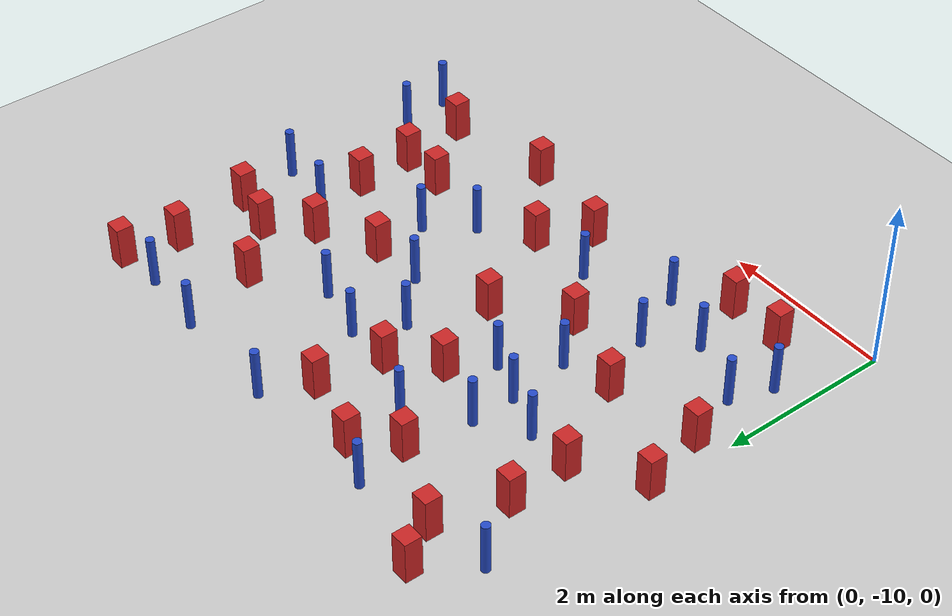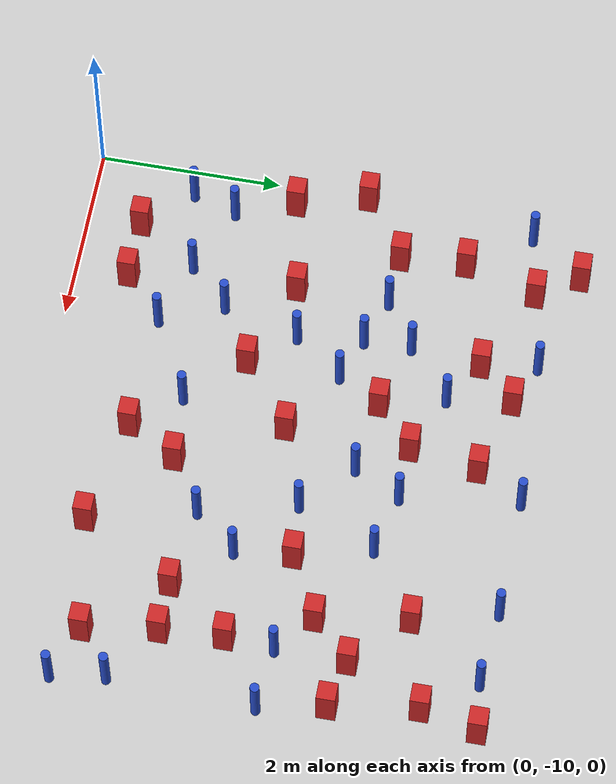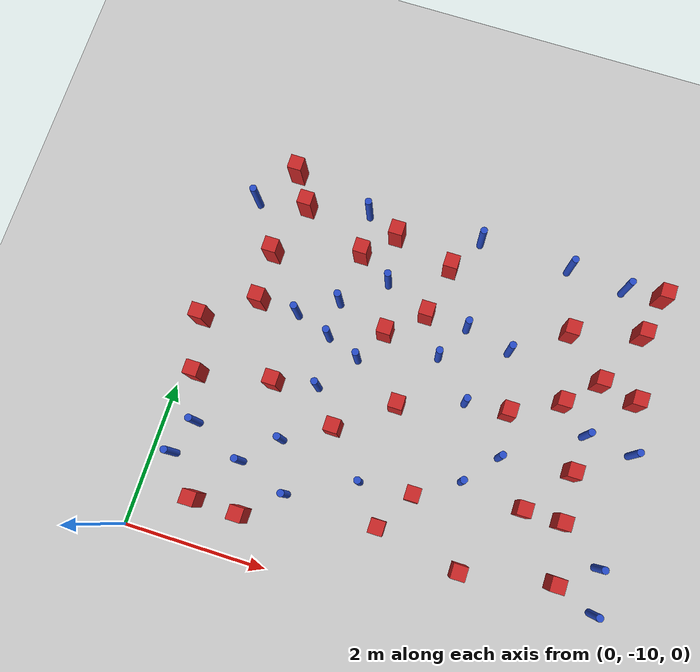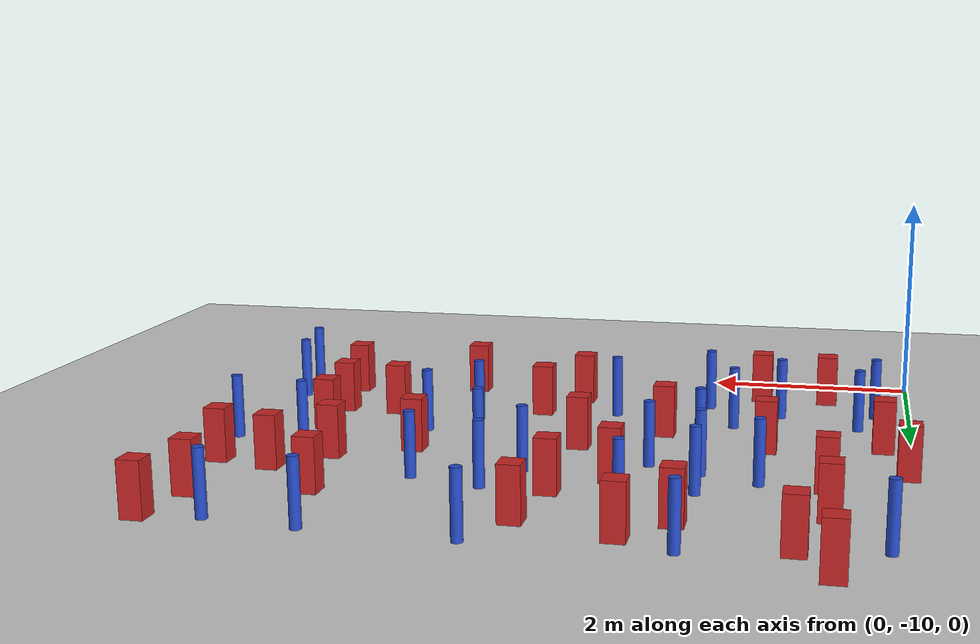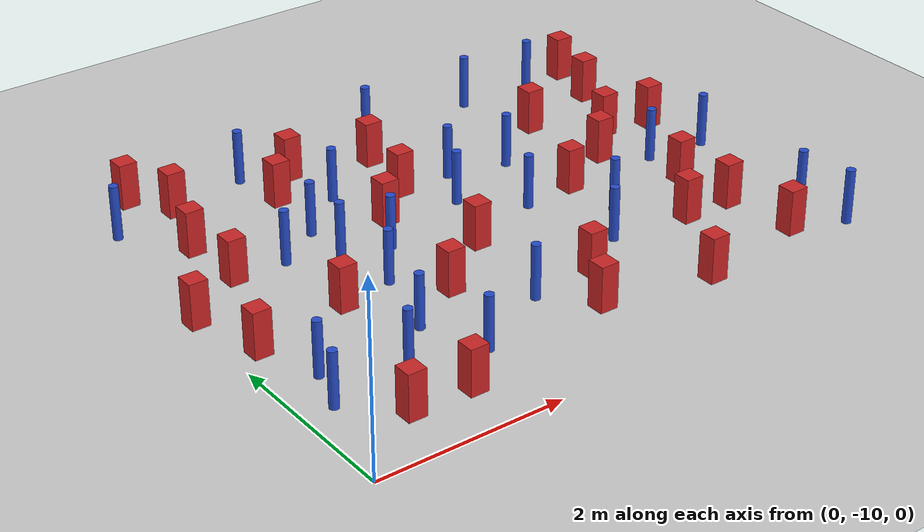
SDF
<sdf version="1.6">
 <world name="default">
  <model name="ground_plane">
   <static>1</static>
   <link name="link">
    <collision name="collision">
     <geometry><plane><normal>0 0 1</normal><size>100 100</size></plane></geometry>
     <surface><friction><ode><mu>100</mu><mu2>50</mu2></ode></friction></surface>
    </collision>
    <visual name="visual">
     <cast_shadows>0</cast_shadows>
     <geometry><plane><normal>0 0 1</normal><size>100 100</size></plane></geometry>
     <material>
      <ambient>1.0 1.0 1.0 1.0</ambient>
      <diffuse>0.8 0.8 0.8 1.0</diffuse>
      <specular>0.01 0.01 0.01 1.000000</specular>
     </material>
    </visual>
   </link>
  </model>
  <model name="square_post_obstacle0">
   <static>true</static>
   <pose>0.944305064648 -4.99120115304 -6.11067671241e-07 -5.50515727128e-06 -8.79689657224e-07 2.37013304536e-05</pose>
   <link name="link">
    <pose>0 0 0.25 0 -0 0</pose>
    <inertial>
     <mass>100</mass>
     <inertia>
      <ixx>0.166667</ixx>
      <ixy>0</ixy>
      <ixz>0</ixz>
      <iyy>0.166667</iyy>
      <iyz>0</iyz>
      <izz>0.166667</izz>
     </inertia>
    </inertial>
    <collision name="collision"><geometry><box><size>.2 .2 .5</size></box></geometry></collision>
    <visual name="visual">
     <geometry><box><size>.2 .2 .5</size></box></geometry>
     <material>
      <script><name>Gazebo/Red</name><uri>file://media/materials/scripts/gazebo.material</uri></script>
     </material>
    </visual>
   </link>
  </model>
  <model name="square_post_obstacle1">
   <static>true</static>
   <pose>2.3046732225 -7.91956817169 -6.11067671241e-07 -5.50515727128e-06 -8.79689657224e-07 2.37013304536e-05</pose>
   <link name="link">
    <pose>0 0 0.25 0 -0 0</pose>
    <inertial>
     <mass>100</mass>
     <inertia>
      <ixx>0.166667</ixx>
      <ixy>0</ixy>
      <ixz>0</ixz>
      <iyy>0.166667</iyy>
      <iyz>0</iyz>
      <izz>0.166667</izz>
     </inertia>
    </inertial>
    <collision name="collision"><geometry><box><size>.2 .2 .5</size></box></geometry></collision>
    <visual name="visual">
     <geometry><box><size>.2 .2 .5</size></box></geometry>
     <material>
      <script><name>Gazebo/Red</name><uri>file://media/materials/scripts/gazebo.material</uri></script>
     </material>
    </visual>
   </link>
  </model>
  <model name="pole_obstacle4">
   <static>true</static>
   <pose>1.67797747055 -8.28879280093 -9.47619616065e-06 5.49618799737e-07 2.36310414046e-07 -1.55090534809e-07</pose>
   <link name="link">
    <pose>0 0 0.3 0 -0 0</pose>
    <inertial>
     <mass>1</mass>
     <inertia><ixx>0.145833</ixx><ixy>0</ixy><ixz>0</ixz><iyy>0.145833</iyy><iyz>0</iyz><izz>0.125</izz></inertia>
    </inertial>
    <collision name="collision">
     <geometry><cylinder><radius>0.05</radius><length>.6</length></cylinder></geometry>
    </collision>
    <visual name="visual">
     <geometry><cylinder><radius>0.05</radius><length>.6</length></cylinder></geometry>
     <material>
      <script><name>Gazebo/Blue</name><uri>file://media/materials/scripts/gazebo.material</uri></script>
     </material>
    </visual>
   </link>
  </model>
  <model name="square_post_obstacle7">
   <static>true</static>
   <pose>3.60023916208 -8.46336494209 -6.11067671241e-07 -5.50515727128e-06 -8.79689657224e-07 2.37013304536e-05</pose>
   <link name="link">
    <pose>0 0 0.25 0 -0 0</pose>
    <inertial>
     <mass>100</mass>
     <inertia>
      <ixx>0.166667</ixx>
      <ixy>0</ixy>
      <ixz>0</ixz>
      <iyy>0.166667</iyy>
      <iyz>0</iyz>
      <izz>0.166667</izz>
     </inertia>
    </inertial>
    <collision name="collision"><geometry><box><size>.2 .2 .5</size></box></geometry></collision>
    <visual name="visual">
     <geometry><box><size>.2 .2 .5</size></box></geometry>
     <material>
      <script><name>Gazebo/Red</name><uri>file://media/materials/scripts/gazebo.material</uri></script>
     </material>
    </visual>
   </link>
  </model>
  <model name="pole_obstacle11">
   <static>true</static>
   <pose>3.64021856873 -6.03391371396 -9.47619616065e-06 5.49618799738e-07 2.3631041406e-07 -1.55090534801e-07</pose>
   <link name="link">
    <pose>0 0 0.3 0 -0 0</pose>
    <inertial>
     <mass>1</mass>
     <inertia><ixx>0.145833</ixx><ixy>0</ixy><ixz>0</ixz><iyy>0.145833</iyy><iyz>0</iyz><izz>0.125</izz></inertia>
    </inertial>
    <collision name="collision">
     <geometry><cylinder><radius>0.05</radius><length>.6</length></cylinder></geometry>
    </collision>
    <visual name="visual">
     <geometry><cylinder><radius>0.05</radius><length>.6</length></cylinder></geometry>
     <material>
      <script><name>Gazebo/Blue</name><uri>file://media/materials/scripts/gazebo.material</uri></script>
     </material>
    </visual>
   </link>
  </model>
  <model name="square_post_obstacle9">
   <static>true</static>
   <pose>5.59965612481 -8.22088846816 -6.11067671241e-07 -5.50515727128e-06 -8.79689657224e-07 2.37013304536e-05</pose>
   <link name="link">
    <pose>0 0 0.25 0 -0 0</pose>
    <inertial>
     <mass>100</mass>
     <inertia>
      <ixx>0.166667</ixx>
      <ixy>0</ixy>
      <ixz>0</ixz>
      <iyy>0.166667</iyy>
      <iyz>0</iyz>
      <izz>0.166667</izz>
     </inertia>
    </inertial>
    <collision name="collision"><geometry><box><size>.2 .2 .5</size></box></geometry></collision>
    <visual name="visual">
     <geometry><box><size>.2 .2 .5</size></box></geometry>
     <material>
      <script><name>Gazebo/Red</name><uri>file://media/materials/scripts/gazebo.material</uri></script>
     </material>
    </visual>
   </link>
  </model>
  <model name="pole_obstacle15">
   <static>true</static>
   <pose>6.21537362861 -8.65453550145 -9.47619616065e-06 5.49618799737e-07 2.36310414065e-07 -1.55090534796e-07</pose>
   <link name="link">
    <pose>0 0 0.3 0 -0 0</pose>
    <inertial>
     <mass>1</mass>
     <inertia><ixx>0.145833</ixx><ixy>0</ixy><ixz>0</ixz><iyy>0.145833</iyy><iyz>0</iyz><izz>0.125</izz></inertia>
    </inertial>
    <collision name="collision">
     <geometry><cylinder><radius>0.05</radius><length>.6</length></cylinder></geometry>
    </collision>
    <visual name="visual">
     <geometry><cylinder><radius>0.05</radius><length>.6</length></cylinder></geometry>
     <material>
      <script><name>Gazebo/Blue</name><uri>file://media/materials/scripts/gazebo.material</uri></script>
     </material>
    </visual>
   </link>
  </model>
  <model name="square_post_obstacle13">
   <static>true</static>
   <pose>1.47115058338 -9.39906032402 -6.11067671241e-07 -5.50515727128e-06 -8.79689657224e-07 2.37013304536e-05</pose>
   <link name="link">
    <pose>0 0 0.25 0 -0 0</pose>
    <inertial>
     <mass>100</mass>
     <inertia>
      <ixx>0.166667</ixx>
      <ixy>0</ixy>
      <ixz>0</ixz>
      <iyy>0.166667</iyy>
      <iyz>0</iyz>
      <izz>0.166667</izz>
     </inertia>
    </inertial>
    <collision name="collision"><geometry><box><size>.2 .2 .5</size></box></geometry></collision>
    <visual name="visual">
     <geometry><box><size>.2 .2 .5</size></box></geometry>
     <material>
      <script><name>Gazebo/Red</name><uri>file://media/materials/scripts/gazebo.material</uri></script>
     </material>
    </visual>
   </link>
  </model>
  <model name="square_post_obstacle15">
   <static>true</static>
   <pose>5.99498577776 -5.40891649735 -6.11067671241e-07 -5.50515727128e-06 -8.79689657224e-07 2.37013304536e-05</pose>
   <link name="link">
    <pose>0 0 0.25 0 -0 0</pose>
    <inertial>
     <mass>100</mass>
     <inertia>
      <ixx>0.166667</ixx>
      <ixy>0</ixy>
      <ixz>0</ixz>
      <iyy>0.166667</iyy>
      <iyz>0</iyz>
      <izz>0.166667</izz>
     </inertia>
    </inertial>
    <collision name="collision"><geometry><box><size>.2 .2 .5</size></box></geometry></collision>
    <visual name="visual">
     <geometry><box><size>.2 .2 .5</size></box></geometry>
     <material>
      <script><name>Gazebo/Red</name><uri>file://media/materials/scripts/gazebo.material</uri></script>
     </material>
    </visual>
   </link>
  </model>
  <model name="square_post_obstacle21">
   <static>true</static>
   <pose>5.18752696278 -6.6581621829 -6.11067671241e-07 -5.50515727128e-06 -8.79689657224e-07 2.37013304536e-05</pose>
   <link name="link">
    <pose>0 0 0.25 0 -0 0</pose>
    <inertial>
     <mass>100</mass>
     <inertia>
      <ixx>0.166667</ixx>
      <ixy>0</ixy>
      <ixz>0</ixz>
      <iyy>0.166667</iyy>
      <iyz>0</iyz>
      <izz>0.166667</izz>
     </inertia>
    </inertial>
    <collision name="collision"><geometry><box><size>.2 .2 .5</size></box></geometry></collision>
    <visual name="visual">
     <geometry><box><size>.2 .2 .5</size></box></geometry>
     <material>
      <script><name>Gazebo/Red</name><uri>file://media/materials/scripts/gazebo.material</uri></script>
     </material>
    </visual>
   </link>
  </model>
  <model name="pole_obstacle31">
   <static>true</static>
   <pose>4.29502055069 -6.18654007028 -9.47619616065e-06 5.49618799737e-07 2.36310414037e-07 -1.55090534814e-07</pose>
   <link name="link">
    <pose>0 0 0.3 0 -0 0</pose>
    <inertial>
     <mass>1</mass>
     <inertia><ixx>0.145833</ixx><ixy>0</ixy><ixz>0</ixz><iyy>0.145833</iyy><iyz>0</iyz><izz>0.125</izz></inertia>
    </inertial>
    <collision name="collision">
     <geometry><cylinder><radius>0.05</radius><length>.6</length></cylinder></geometry>
    </collision>
    <visual name="visual">
     <geometry><cylinder><radius>0.05</radius><length>.6</length></cylinder></geometry>
     <material>
      <script><name>Gazebo/Blue</name><uri>file://media/materials/scripts/gazebo.material</uri></script>
     </material>
    </visual>
   </link>
  </model>
  <model name="pole_obstacle35">
   <static>true</static>
   <pose>5.60534455496 -4.85108484757 -9.47619616065e-06 5.49618799737e-07 2.36310414037e-07 -1.55090534814e-07</pose>
   <link name="link">
    <pose>0 0 0.3 0 -0 0</pose>
    <inertial>
     <mass>1</mass>
     <inertia><ixx>0.145833</ixx><ixy>0</ixy><ixz>0</ixz><iyy>0.145833</iyy><iyz>0</iyz><izz>0.125</izz></inertia>
    </inertial>
    <collision name="collision">
     <geometry><cylinder><radius>0.05</radius><length>.6</length></cylinder></geometry>
    </collision>
    <visual name="visual">
     <geometry><cylinder><radius>0.05</radius><length>.6</length></cylinder></geometry>
     <material>
      <script><name>Gazebo/Blue</name><uri>file://media/materials/scripts/gazebo.material</uri></script>
     </material>
    </visual>
   </link>
  </model>
  <model name="pole_obstacle38">
   <static>true</static>
   <pose>1.96762687938 -8.97004564246 -9.47619616065e-06 5.49618799737e-07 2.3631041405e-07 -1.55090534805e-07</pose>
   <link name="link">
    <pose>0 0 0.3 0 -0 0</pose>
    <inertial>
     <mass>1</mass>
     <inertia><ixx>0.145833</ixx><ixy>0</ixy><ixz>0</ixz><iyy>0.145833</iyy><iyz>0</iyz><izz>0.125</izz></inertia>
    </inertial>
    <collision name="collision">
     <geometry><cylinder><radius>0.05</radius><length>.6</length></cylinder></geometry>
    </collision>
    <visual name="visual">
     <geometry><cylinder><radius>0.05</radius><length>.6</length></cylinder></geometry>
     <material>
      <script><name>Gazebo/Blue</name><uri>file://media/materials/scripts/gazebo.material</uri></script>
     </material>
    </visual>
   </link>
  </model>
  <model name="square_post_obstacle31">
   <static>true</static>
   <pose>3.03151729697 -7.36416382544 -6.11067671241e-07 -5.50515727128e-06 -8.79689657224e-07 2.37013304536e-05</pose>
   <link name="link">
    <pose>0 0 0.25 0 -0 0</pose>
    <inertial>
     <mass>100</mass>
     <inertia>
      <ixx>0.166667</ixx>
      <ixy>0</ixy>
      <ixz>0</ixz>
      <iyy>0.166667</iyy>
      <iyz>0</iyz>
      <izz>0.166667</izz>
     </inertia>
    </inertial>
    <collision name="collision"><geometry><box><size>.2 .2 .5</size></box></geometry></collision>
    <visual name="visual">
     <geometry><box><size>.2 .2 .5</size></box></geometry>
     <material>
      <script><name>Gazebo/Red</name><uri>file://media/materials/scripts/gazebo.material</uri></script>
     </material>
    </visual>
   </link>
  </model>
  <model name="square_post_obstacle34">
   <static>true</static>
   <pose>3.17023508238 -5.26417116413 -6.11067671241e-07 -5.50515727128e-06 -8.79689657224e-07 2.37013304536e-05</pose>
   <link name="link">
    <pose>0 0 0.25 0 -0 0</pose>
    <inertial>
     <mass>100</mass>
     <inertia>
      <ixx>0.166667</ixx>
      <ixy>0</ixy>
      <ixz>0</ixz>
      <iyy>0.166667</iyy>
      <iyz>0</iyz>
      <izz>0.166667</izz>
     </inertia>
    </inertial>
    <collision name="collision"><geometry><box><size>.2 .2 .5</size></box></geometry></collision>
    <visual name="visual">
     <geometry><box><size>.2 .2 .5</size></box></geometry>
     <material>
      <script><name>Gazebo/Red</name><uri>file://media/materials/scripts/gazebo.material</uri></script>
     </material>
    </visual>
   </link>
  </model>
  <model name="pole_obstacle56">
   <static>true</static>
   <pose>2.39150284347 -5.73279247462 -9.47619616065e-06 5.49618799738e-07 2.3631041406e-07 -1.55090534801e-07</pose>
   <link name="link">
    <pose>0 0 0.3 0 -0 0</pose>
    <inertial>
     <mass>1</mass>
     <inertia><ixx>0.145833</ixx><ixy>0</ixy><ixz>0</ixz><iyy>0.145833</iyy><iyz>0</iyz><izz>0.125</izz></inertia>
    </inertial>
    <collision name="collision">
     <geometry><cylinder><radius>0.05</radius><length>.6</length></cylinder></geometry>
    </collision>
    <visual name="visual">
     <geometry><cylinder><radius>0.05</radius><length>.6</length></cylinder></geometry>
     <material>
      <script><name>Gazebo/Blue</name><uri>file://media/materials/scripts/gazebo.material</uri></script>
     </material>
    </visual>
   </link>
  </model>
  <model name="square_post_obstacle44">
   <static>true</static>
   <pose>5.60926706716 -6.23113558751 -6.11067671241e-07 -5.50515727128e-06 -8.79689657224e-07 2.37013304536e-05</pose>
   <link name="link">
    <pose>0 0 0.25 0 -0 0</pose>
    <inertial>
     <mass>100</mass>
     <inertia>
      <ixx>0.166667</ixx>
      <ixy>0</ixy>
      <ixz>0</ixz>
      <iyy>0.166667</iyy>
      <iyz>0</iyz>
      <izz>0.166667</izz>
     </inertia>
    </inertial>
    <collision name="collision"><geometry><box><size>.2 .2 .5</size></box></geometry></collision>
    <visual name="visual">
     <geometry><box><size>.2 .2 .5</size></box></geometry>
     <material>
      <script><name>Gazebo/Red</name><uri>file://media/materials/scripts/gazebo.material</uri></script>
     </material>
    </visual>
   </link>
  </model>
  <model name="square_post_obstacle49">
   <static>true</static>
   <pose>0.700326026376 -5.79109118743 -6.11067671241e-07 -5.50515727128e-06 -8.79689657224e-07 2.37013304536e-05</pose>
   <link name="link">
    <pose>0 0 0.25 0 -0 0</pose>
    <inertial>
     <mass>100</mass>
     <inertia>
      <ixx>0.166667</ixx>
      <ixy>0</ixy>
      <ixz>0</ixz>
      <iyy>0.166667</iyy>
      <iyz>0</iyz>
      <izz>0.166667</izz>
     </inertia>
    </inertial>
    <collision name="collision"><geometry><box><size>.2 .2 .5</size></box></geometry></collision>
    <visual name="visual">
     <geometry><box><size>.2 .2 .5</size></box></geometry>
     <material>
      <script><name>Gazebo/Red</name><uri>file://media/materials/scripts/gazebo.material</uri></script>
     </material>
    </visual>
   </link>
  </model>
  <model name="pole_obstacle65">
   <static>true</static>
   <pose>0.329968783683 -8.89167319185 -9.47619616065e-06 5.49618799737e-07 2.36310414031e-07 -1.55090534818e-07</pose>
   <link name="link">
    <pose>0 0 0.3 0 -0 0</pose>
    <inertial>
     <mass>1</mass>
     <inertia><ixx>0.145833</ixx><ixy>0</ixy><ixz>0</ixz><iyy>0.145833</iyy><iyz>0</iyz><izz>0.125</izz></inertia>
    </inertial>
    <collision name="collision">
     <geometry><cylinder><radius>0.05</radius><length>.6</length></cylinder></geometry>
    </collision>
    <visual name="visual">
     <geometry><cylinder><radius>0.05</radius><length>.6</length></cylinder></geometry>
     <material>
      <script><name>Gazebo/Blue</name><uri>file://media/materials/scripts/gazebo.material</uri></script>
     </material>
    </visual>
   </link>
  </model>
  <model name="square_post_obstacle60">
   <static>true</static>
   <pose>5.05714817826 -8.21093973107 -6.11067671241e-07 -5.50515727128e-06 -8.79689657224e-07 2.37013304536e-05</pose>
   <link name="link">
    <pose>0 0 0.25 0 -0 0</pose>
    <inertial>
     <mass>100</mass>
     <inertia>
      <ixx>0.166667</ixx>
      <ixy>0</ixy>
      <ixz>0</ixz>
      <iyy>0.166667</iyy>
      <iyz>0</iyz>
      <izz>0.166667</izz>
     </inertia>
    </inertial>
    <collision name="collision"><geometry><box><size>.2 .2 .5</size></box></geometry></collision>
    <visual name="visual">
     <geometry><box><size>.2 .2 .5</size></box></geometry>
     <material>
      <script><name>Gazebo/Red</name><uri>file://media/materials/scripts/gazebo.material</uri></script>
     </material>
    </visual>
   </link>
  </model>
  <model name="square_post_obstacle62">
   <static>true</static>
   <pose>1.31971626028 -7.55564227925 -6.11067671241e-07 -5.50515727128e-06 -8.79689657224e-07 2.37013304536e-05</pose>
   <link name="link">
    <pose>0 0 0.25 0 -0 0</pose>
    <inertial>
     <mass>100</mass>
     <inertia>
      <ixx>0.166667</ixx>
      <ixy>0</ixy>
      <ixz>0</ixz>
      <iyy>0.166667</iyy>
      <iyz>0</iyz>
      <izz>0.166667</izz>
     </inertia>
    </inertial>
    <collision name="collision"><geometry><box><size>.2 .2 .5</size></box></geometry></collision>
    <visual name="visual">
     <geometry><box><size>.2 .2 .5</size></box></geometry>
     <material>
      <script><name>Gazebo/Red</name><uri>file://media/materials/scripts/gazebo.material</uri></script>
     </material>
    </visual>
   </link>
  </model>
  <model name="pole_obstacle79">
   <static>true</static>
   <pose>1.82503196989 -6.20689447037 -9.47619616065e-06 5.49618799737e-07 2.36310414061e-07 -1.550905348e-07</pose>
   <link name="link">
    <pose>0 0 0.3 0 -0 0</pose>
    <inertial>
     <mass>1</mass>
     <inertia><ixx>0.145833</ixx><ixy>0</ixy><ixz>0</ixz><iyy>0.145833</iyy><iyz>0</iyz><izz>0.125</izz></inertia>
    </inertial>
    <collision name="collision">
     <geometry><cylinder><radius>0.05</radius><length>.6</length></cylinder></geometry>
    </collision>
    <visual name="visual">
     <geometry><cylinder><radius>0.05</radius><length>.6</length></cylinder></geometry>
     <material>
      <script><name>Gazebo/Blue</name><uri>file://media/materials/scripts/gazebo.material</uri></script>
     </material>
    </visual>
   </link>
  </model>
  <model name="pole_obstacle80">
   <static>true</static>
   <pose>4.78120823605 -4.77794959695 -9.47619616065e-06 5.49618799737e-07 2.36310414037e-07 -1.55090534814e-07</pose>
   <link name="link">
    <pose>0 0 0.3 0 -0 0</pose>
    <inertial>
     <mass>1</mass>
     <inertia><ixx>0.145833</ixx><ixy>0</ixy><ixz>0</ixz><iyy>0.145833</iyy><iyz>0</iyz><izz>0.125</izz></inertia>
    </inertial>
    <collision name="collision">
     <geometry><cylinder><radius>0.05</radius><length>.6</length></cylinder></geometry>
    </collision>
    <visual name="visual">
     <geometry><cylinder><radius>0.05</radius><length>.6</length></cylinder></geometry>
     <material>
      <script><name>Gazebo/Blue</name><uri>file://media/materials/scripts/gazebo.material</uri></script>
     </material>
    </visual>
   </link>
  </model>
  <model name="pole_obstacle81">
   <static>true</static>
   <pose>2.31125711674 -6.90967217997 -9.47619616065e-06 5.49618799738e-07 2.3631041406e-07 -1.55090534801e-07</pose>
   <link name="link">
    <pose>0 0 0.3 0 -0 0</pose>
    <inertial>
     <mass>1</mass>
     <inertia><ixx>0.145833</ixx><ixy>0</ixy><ixz>0</ixz><iyy>0.145833</iyy><iyz>0</iyz><izz>0.125</izz></inertia>
    </inertial>
    <collision name="collision">
     <geometry><cylinder><radius>0.05</radius><length>.6</length></cylinder></geometry>
    </collision>
    <visual name="visual">
     <geometry><cylinder><radius>0.05</radius><length>.6</length></cylinder></geometry>
     <material>
      <script><name>Gazebo/Blue</name><uri>file://media/materials/scripts/gazebo.material</uri></script>
     </material>
    </visual>
   </link>
  </model>
  <model name="square_post_obstacle71">
   <static>true</static>
   <pose>3.27819902768 -9.01152003818 -6.11067671241e-07 -5.50515727128e-06 -8.79689657224e-07 2.37013304536e-05</pose>
   <link name="link">
    <pose>0 0 0.25 0 -0 0</pose>
    <inertial>
     <mass>100</mass>
     <inertia>
      <ixx>0.166667</ixx>
      <ixy>0</ixy>
      <ixz>0</ixz>
      <iyy>0.166667</iyy>
      <iyz>0</iyz>
      <izz>0.166667</izz>
     </inertia>
    </inertial>
    <collision name="collision"><geometry><box><size>.2 .2 .5</size></box></geometry></collision>
    <visual name="visual">
     <geometry><box><size>.2 .2 .5</size></box></geometry>
     <material>
      <script><name>Gazebo/Red</name><uri>file://media/materials/scripts/gazebo.material</uri></script>
     </material>
    </visual>
   </link>
  </model>
  <model name="square_post_obstacle72">
   <static>true</static>
   <pose>4.51131325471 -7.0048234692 -6.11067671241e-07 -5.50515727128e-06 -8.79689657224e-07 2.37013304536e-05</pose>
   <link name="link">
    <pose>0 0 0.25 0 -0 0</pose>
    <inertial>
     <mass>100</mass>
     <inertia>
      <ixx>0.166667</ixx>
      <ixy>0</ixy>
      <ixz>0</ixz>
      <iyy>0.166667</iyy>
      <iyz>0</iyz>
      <izz>0.166667</izz>
     </inertia>
    </inertial>
    <collision name="collision"><geometry><box><size>.2 .2 .5</size></box></geometry></collision>
    <visual name="visual">
     <geometry><box><size>.2 .2 .5</size></box></geometry>
     <material>
      <script><name>Gazebo/Red</name><uri>file://media/materials/scripts/gazebo.material</uri></script>
     </material>
    </visual>
   </link>
  </model>
  <model name="pole_obstacle87">
   <static>true</static>
   <pose>1.82265798265 -4.82604569201 -9.47619616065e-06 5.49618799737e-07 2.36310414061e-07 -1.550905348e-07</pose>
   <link name="link">
    <pose>0 0 0.3 0 -0 0</pose>
    <inertial>
     <mass>1</mass>
     <inertia><ixx>0.145833</ixx><ixy>0</ixy><ixz>0</ixz><iyy>0.145833</iyy><iyz>0</iyz><izz>0.125</izz></inertia>
    </inertial>
    <collision name="collision">
     <geometry><cylinder><radius>0.05</radius><length>.6</length></cylinder></geometry>
    </collision>
    <visual name="visual">
     <geometry><cylinder><radius>0.05</radius><length>.6</length></cylinder></geometry>
     <material>
      <script><name>Gazebo/Blue</name><uri>file://media/materials/scripts/gazebo.material</uri></script>
     </material>
    </visual>
   </link>
  </model>
  <model name="square_post_obstacle81">
   <static>true</static>
   <pose>5.02497970508 -5.66913069943 -6.11067671241e-07 -5.50515727128e-06 -8.79689657224e-07 2.37013304536e-05</pose>
   <link name="link">
    <pose>0 0 0.25 0 -0 0</pose>
    <inertial>
     <mass>100</mass>
     <inertia>
      <ixx>0.166667</ixx>
      <ixy>0</ixy>
      <ixz>0</ixz>
      <iyy>0.166667</iyy>
      <iyz>0</iyz>
      <izz>0.166667</izz>
     </inertia>
    </inertial>
    <collision name="collision"><geometry><box><size>.2 .2 .5</size></box></geometry></collision>
    <visual name="visual">
     <geometry><box><size>.2 .2 .5</size></box></geometry>
     <material>
      <script><name>Gazebo/Red</name><uri>file://media/materials/scripts/gazebo.material</uri></script>
     </material>
    </visual>
   </link>
  </model>
  <model name="square_post_obstacle89">
   <static>true</static>
   <pose>0.744020787531 -6.51215683697 -6.11067671241e-07 -5.50515727128e-06 -8.79689657224e-07 2.37013304536e-05</pose>
   <link name="link">
    <pose>0 0 0.25 0 -0 0</pose>
    <inertial>
     <mass>100</mass>
     <inertia>
      <ixx>0.166667</ixx>
      <ixy>0</ixy>
      <ixz>0</ixz>
      <iyy>0.166667</iyy>
      <iyz>0</iyz>
      <izz>0.166667</izz>
     </inertia>
    </inertial>
    <collision name="collision"><geometry><box><size>.2 .2 .5</size></box></geometry></collision>
    <visual name="visual">
     <geometry><box><size>.2 .2 .5</size></box></geometry>
     <material>
      <script><name>Gazebo/Red</name><uri>file://media/materials/scripts/gazebo.material</uri></script>
     </material>
    </visual>
   </link>
  </model>
  <model name="pole_obstacle120">
   <static>true</static>
   <pose>4.18018859334 -8.09982392997 -9.47619616065e-06 5.49618799737e-07 2.36310414065e-07 -1.55090534796e-07</pose>
   <link name="link">
    <pose>0 0 0.3 0 -0 0</pose>
    <inertial>
     <mass>1</mass>
     <inertia><ixx>0.145833</ixx><ixy>0</ixy><ixz>0</ixz><iyy>0.145833</iyy><iyz>0</iyz><izz>0.125</izz></inertia>
    </inertial>
    <collision name="collision">
     <geometry><cylinder><radius>0.05</radius><length>.6</length></cylinder></geometry>
    </collision>
    <visual name="visual">
     <geometry><cylinder><radius>0.05</radius><length>.6</length></cylinder></geometry>
     <material>
      <script><name>Gazebo/Blue</name><uri>file://media/materials/scripts/gazebo.material</uri></script>
     </material>
    </visual>
   </link>
  </model>
  <model name="square_post_obstacle122">
   <static>true</static>
   <pose>3.04468027046 -6.01781293562 -6.11067671241e-07 -5.50515727128e-06 -8.79689657224e-07 2.37013304536e-05</pose>
   <link name="link">
    <pose>0 0 0.25 0 -0 0</pose>
    <inertial>
     <mass>100</mass>
     <inertia>
      <ixx>0.166667</ixx>
      <ixy>0</ixy>
      <ixz>0</ixz>
      <iyy>0.166667</iyy>
      <iyz>0</iyz>
      <izz>0.166667</izz>
     </inertia>
    </inertial>
    <collision name="collision"><geometry><box><size>.2 .2 .5</size></box></geometry></collision>
    <visual name="visual">
     <geometry><box><size>.2 .2 .5</size></box></geometry>
     <material>
      <script><name>Gazebo/Red</name><uri>file://media/materials/scripts/gazebo.material</uri></script>
     </material>
    </visual>
   </link>
  </model>
  <model name="pole_obstacle131">
   <static>true</static>
   <pose>3.91617384482 -7.0561596885 -9.47619616065e-06 5.49618799738e-07 2.3631041406e-07 -1.55090534801e-07</pose>
   <link name="link">
    <pose>0 0 0.3 0 -0 0</pose>
    <inertial>
     <mass>1</mass>
     <inertia><ixx>0.145833</ixx><ixy>0</ixy><ixz>0</ixz><iyy>0.145833</iyy><iyz>0</iyz><izz>0.125</izz></inertia>
    </inertial>
    <collision name="collision">
     <geometry><cylinder><radius>0.05</radius><length>.6</length></cylinder></geometry>
    </collision>
    <visual name="visual">
     <geometry><cylinder><radius>0.05</radius><length>.6</length></cylinder></geometry>
     <material>
      <script><name>Gazebo/Blue</name><uri>file://media/materials/scripts/gazebo.material</uri></script>
     </material>
    </visual>
   </link>
  </model>
  <model name="square_post_obstacle126">
   <static>true</static>
   <pose>2.5713242142 -6.43253332742 -6.11067671241e-07 -5.50515727128e-06 -8.79689657224e-07 2.37013304536e-05</pose>
   <link name="link">
    <pose>0 0 0.25 0 -0 0</pose>
    <inertial>
     <mass>100</mass>
     <inertia>
      <ixx>0.166667</ixx>
      <ixy>0</ixy>
      <ixz>0</ixz>
      <iyy>0.166667</iyy>
      <iyz>0</iyz>
      <izz>0.166667</izz>
     </inertia>
    </inertial>
    <collision name="collision"><geometry><box><size>.2 .2 .5</size></box></geometry></collision>
    <visual name="visual">
     <geometry><box><size>.2 .2 .5</size></box></geometry>
     <material>
      <script><name>Gazebo/Red</name><uri>file://media/materials/scripts/gazebo.material</uri></script>
     </material>
    </visual>
   </link>
  </model>
  <model name="square_post_obstacle130">
   <static>true</static>
   <pose>5.56051652671 -7.53718563358 -6.11067671241e-07 -5.50515727128e-06 -8.79689657224e-07 2.37013304536e-05</pose>
   <link name="link">
    <pose>0 0 0.25 0 -0 0</pose>
    <inertial>
     <mass>100</mass>
     <inertia>
      <ixx>0.166667</ixx>
      <ixy>0</ixy>
      <ixz>0</ixz>
      <iyy>0.166667</iyy>
      <iyz>0</iyz>
      <izz>0.166667</izz>
     </inertia>
    </inertial>
    <collision name="collision"><geometry><box><size>.2 .2 .5</size></box></geometry></collision>
    <visual name="visual">
     <geometry><box><size>.2 .2 .5</size></box></geometry>
     <material>
      <script><name>Gazebo/Red</name><uri>file://media/materials/scripts/gazebo.material</uri></script>
     </material>
    </visual>
   </link>
  </model>
  <model name="pole_obstacle139">
   <static>true</static>
   <pose>6.29726681419 -9.23844960343 -9.47619616065e-06 5.49618799737e-07 2.36310414065e-07 -1.55090534796e-07</pose>
   <link name="link">
    <pose>0 0 0.3 0 -0 0</pose>
    <inertial>
     <mass>1</mass>
     <inertia><ixx>0.145833</ixx><ixy>0</ixy><ixz>0</ixz><iyy>0.145833</iyy><iyz>0</iyz><izz>0.125</izz></inertia>
    </inertial>
    <collision name="collision">
     <geometry><cylinder><radius>0.05</radius><length>.6</length></cylinder></geometry>
    </collision>
    <visual name="visual">
     <geometry><cylinder><radius>0.05</radius><length>.6</length></cylinder></geometry>
     <material>
      <script><name>Gazebo/Blue</name><uri>file://media/materials/scripts/gazebo.material</uri></script>
     </material>
    </visual>
   </link>
  </model>
  <model name="pole_obstacle147">
   <static>true</static>
   <pose>3.38037587237 -6.54689293471 -9.47619616065e-06 5.49618799738e-07 2.3631041406e-07 -1.55090534801e-07</pose>
   <link name="link">
    <pose>0 0 0.3 0 -0 0</pose>
    <inertial>
     <mass>1</mass>
     <inertia><ixx>0.145833</ixx><ixy>0</ixy><ixz>0</ixz><iyy>0.145833</iyy><iyz>0</iyz><izz>0.125</izz></inertia>
    </inertial>
    <collision name="collision">
     <geometry><cylinder><radius>0.05</radius><length>.6</length></cylinder></geometry>
    </collision>
    <visual name="visual">
     <geometry><cylinder><radius>0.05</radius><length>.6</length></cylinder></geometry>
     <material>
      <script><name>Gazebo/Blue</name><uri>file://media/materials/scripts/gazebo.material</uri></script>
     </material>
    </visual>
   </link>
  </model>
  <model name="square_post_obstacle141">
   <static>true</static>
   <pose>4.46594120798 -9.24072888151 -6.11067671241e-07 -5.50515727128e-06 -8.79689657224e-07 2.37013304536e-05</pose>
   <link name="link">
    <pose>0 0 0.25 0 -0 0</pose>
    <inertial>
     <mass>100</mass>
     <inertia>
      <ixx>0.166667</ixx>
      <ixy>0</ixy>
      <ixz>0</ixz>
      <iyy>0.166667</iyy>
      <iyz>0</iyz>
      <izz>0.166667</izz>
     </inertia>
    </inertial>
    <collision name="collision"><geometry><box><size>.2 .2 .5</size></box></geometry></collision>
    <visual name="visual">
     <geometry><box><size>.2 .2 .5</size></box></geometry>
     <material>
      <script><name>Gazebo/Red</name><uri>file://media/materials/scripts/gazebo.material</uri></script>
     </material>
    </visual>
   </link>
  </model>
  <model name="square_post_obstacle152">
   <static>true</static>
   <pose>0.0542458789927 -6.98165424372 -6.11067671241e-07 -5.50515727128e-06 -8.79689657224e-07 2.37013304536e-05</pose>
   <link name="link">
    <pose>0 0 0.25 0 -0 0</pose>
    <inertial>
     <mass>100</mass>
     <inertia>
      <ixx>0.166667</ixx>
      <ixy>0</ixy>
      <ixz>0</ixz>
      <iyy>0.166667</iyy>
      <iyz>0</iyz>
      <izz>0.166667</izz>
     </inertia>
    </inertial>
    <collision name="collision"><geometry><box><size>.2 .2 .5</size></box></geometry></collision>
    <visual name="visual">
     <geometry><box><size>.2 .2 .5</size></box></geometry>
     <material>
      <script><name>Gazebo/Red</name><uri>file://media/materials/scripts/gazebo.material</uri></script>
     </material>
    </visual>
   </link>
  </model>
  <model name="pole_obstacle162">
   <static>true</static>
   <pose>1.31406002495 -6.54387579898 -9.47619616065e-06 5.49618799737e-07 2.36310414061e-07 -1.550905348e-07</pose>
   <link name="link">
    <pose>0 0 0.3 0 -0 0</pose>
    <inertial>
     <mass>1</mass>
     <inertia><ixx>0.145833</ixx><ixy>0</ixy><ixz>0</ixz><iyy>0.145833</iyy><iyz>0</iyz><izz>0.125</izz></inertia>
    </inertial>
    <collision name="collision">
     <geometry><cylinder><radius>0.05</radius><length>.6</length></cylinder></geometry>
    </collision>
    <visual name="visual">
     <geometry><cylinder><radius>0.05</radius><length>.6</length></cylinder></geometry>
     <material>
      <script><name>Gazebo/Blue</name><uri>file://media/materials/scripts/gazebo.material</uri></script>
     </material>
    </visual>
   </link>
  </model>
  <model name="square_post_obstacle163">
   <static>true</static>
   <pose>0.648881428835 -4.53741471038 -6.11067671241e-07 -5.50515727128e-06 -8.79689657224e-07 2.37013304536e-05</pose>
   <link name="link">
    <pose>0 0 0.25 0 -0 0</pose>
    <inertial>
     <mass>100</mass>
     <inertia>
      <ixx>0.166667</ixx>
      <ixy>0</ixy>
      <ixz>0</ixz>
      <iyy>0.166667</iyy>
      <iyz>0</iyz>
      <izz>0.166667</izz>
     </inertia>
    </inertial>
    <collision name="collision"><geometry><box><size>.2 .2 .5</size></box></geometry></collision>
    <visual name="visual">
     <geometry><box><size>.2 .2 .5</size></box></geometry>
     <material>
      <script><name>Gazebo/Red</name><uri>file://media/materials/scripts/gazebo.material</uri></script>
     </material>
    </visual>
   </link>
  </model>
  <model name="square_post_obstacle171">
   <static>true</static>
   <pose>2.30219786471 -5.03026266581 -6.11067671241e-07 -5.50515727128e-06 -8.79689657224e-07 2.37013304536e-05</pose>
   <link name="link">
    <pose>0 0 0.25 0 -0 0</pose>
    <inertial>
     <mass>100</mass>
     <inertia>
      <ixx>0.166667</ixx>
      <ixy>0</ixy>
      <ixz>0</ixz>
      <iyy>0.166667</iyy>
      <iyz>0</iyz>
      <izz>0.166667</izz>
     </inertia>
    </inertial>
    <collision name="collision"><geometry><box><size>.2 .2 .5</size></box></geometry></collision>
    <visual name="visual">
     <geometry><box><size>.2 .2 .5</size></box></geometry>
     <material>
      <script><name>Gazebo/Red</name><uri>file://media/materials/scripts/gazebo.material</uri></script>
     </material>
    </visual>
   </link>
  </model>
  <model name="square_post_obstacle172">
   <static>true</static>
   <pose>5.72306696268 -9.01501402918 -6.11067671241e-07 -5.50515727128e-06 -8.79689657224e-07 2.37013304536e-05</pose>
   <link name="link">
    <pose>0 0 0.25 0 -0 0</pose>
    <inertial>
     <mass>100</mass>
     <inertia>
      <ixx>0.166667</ixx>
      <ixy>0</ixy>
      <ixz>0</ixz>
      <iyy>0.166667</iyy>
      <iyz>0</iyz>
      <izz>0.166667</izz>
     </inertia>
    </inertial>
    <collision name="collision"><geometry><box><size>.2 .2 .5</size></box></geometry></collision>
    <visual name="visual">
     <geometry><box><size>.2 .2 .5</size></box></geometry>
     <material>
      <script><name>Gazebo/Red</name><uri>file://media/materials/scripts/gazebo.material</uri></script>
     </material>
    </visual>
   </link>
  </model>
  <model name="square_post_obstacle174">
   <static>true</static>
   <pose>6.13305073037 -4.79169062722 -6.11067671241e-07 -5.50515727128e-06 -8.79689657224e-07 2.37013304536e-05</pose>
   <link name="link">
    <pose>0 0 0.25 0 -0 0</pose>
    <inertial>
     <mass>100</mass>
     <inertia>
      <ixx>0.166667</ixx>
      <ixy>0</ixy>
      <ixz>0</ixz>
      <iyy>0.166667</iyy>
      <iyz>0</iyz>
      <izz>0.166667</izz>
     </inertia>
    </inertial>
    <collision name="collision"><geometry><box><size>.2 .2 .5</size></box></geometry></collision>
    <visual name="visual">
     <geometry><box><size>.2 .2 .5</size></box></geometry>
     <material>
      <script><name>Gazebo/Red</name><uri>file://media/materials/scripts/gazebo.material</uri></script>
     </material>
    </visual>
   </link>
  </model>
  <model name="pole_obstacle179">
   <static>true</static>
   <pose>1.83494818966 -6.72790086223 -9.47619616065e-06 5.49618799737e-07 2.36310414061e-07 -1.550905348e-07</pose>
   <link name="link">
    <pose>0 0 0.3 0 -0 0</pose>
    <inertial>
     <mass>1</mass>
     <inertia><ixx>0.145833</ixx><ixy>0</ixy><ixz>0</ixz><iyy>0.145833</iyy><iyz>0</iyz><izz>0.125</izz></inertia>
    </inertial>
    <collision name="collision">
     <geometry><cylinder><radius>0.05</radius><length>.6</length></cylinder></geometry>
    </collision>
    <visual name="visual">
     <geometry><cylinder><radius>0.05</radius><length>.6</length></cylinder></geometry>
     <material>
      <script><name>Gazebo/Blue</name><uri>file://media/materials/scripts/gazebo.material</uri></script>
     </material>
    </visual>
   </link>
  </model>
  <model name="pole_obstacle180">
   <static>true</static>
   <pose>6.27791206727 -7.07352197416 -9.47619616065e-06 5.49618799737e-07 2.36310414037e-07 -1.55090534814e-07</pose>
   <link name="link">
    <pose>0 0 0.3 0 -0 0</pose>
    <inertial>
     <mass>1</mass>
     <inertia><ixx>0.145833</ixx><ixy>0</ixy><ixz>0</ixz><iyy>0.145833</iyy><iyz>0</iyz><izz>0.125</izz></inertia>
    </inertial>
    <collision name="collision">
     <geometry><cylinder><radius>0.05</radius><length>.6</length></cylinder></geometry>
    </collision>
    <visual name="visual">
     <geometry><cylinder><radius>0.05</radius><length>.6</length></cylinder></geometry>
     <material>
      <script><name>Gazebo/Blue</name><uri>file://media/materials/scripts/gazebo.material</uri></script>
     </material>
    </visual>
   </link>
  </model>
  <model name="square_post_obstacle185">
   <static>true</static>
   <pose>1.91042310188 -5.43519048765 -6.11067671241e-07 -5.50515727128e-06 -8.79689657224e-07 2.37013304536e-05</pose>
   <link name="link">
    <pose>0 0 0.25 0 -0 0</pose>
    <inertial>
     <mass>100</mass>
     <inertia>
      <ixx>0.166667</ixx>
      <ixy>0</ixy>
      <ixz>0</ixz>
      <iyy>0.166667</iyy>
      <iyz>0</iyz>
      <izz>0.166667</izz>
     </inertia>
    </inertial>
    <collision name="collision"><geometry><box><size>.2 .2 .5</size></box></geometry></collision>
    <visual name="visual">
     <geometry><box><size>.2 .2 .5</size></box></geometry>
     <material>
      <script><name>Gazebo/Red</name><uri>file://media/materials/scripts/gazebo.material</uri></script>
     </material>
    </visual>
   </link>
  </model>
  <model name="square_post_obstacle190">
   <static>true</static>
   <pose>0.259827502119 -7.75489717896 -6.11067671241e-07 -5.50515727128e-06 -8.79689657224e-07 2.37013304536e-05</pose>
   <link name="link">
    <pose>0 0 0.25 0 -0 0</pose>
    <inertial>
     <mass>100</mass>
     <inertia>
      <ixx>0.166667</ixx>
      <ixy>0</ixy>
      <ixz>0</ixz>
      <iyy>0.166667</iyy>
      <iyz>0</iyz>
      <izz>0.166667</izz>
     </inertia>
    </inertial>
    <collision name="collision"><geometry><box><size>.2 .2 .5</size></box></geometry></collision>
    <visual name="visual">
     <geometry><box><size>.2 .2 .5</size></box></geometry>
     <material>
      <script><name>Gazebo/Red</name><uri>file://media/materials/scripts/gazebo.material</uri></script>
     </material>
    </visual>
   </link>
  </model>
  <model name="pole_obstacle190">
   <static>true</static>
   <pose>2.86298373448 -8.51568948971 -9.4761961606e-06 5.49618799729e-07 2.36310414e-07 -1.55090534824e-07</pose>
   <link name="link">
    <pose>0 0 0.3 0 -0 0</pose>
    <inertial>
     <mass>1</mass>
     <inertia><ixx>0.145833</ixx><ixy>0</ixy><ixz>0</ixz><iyy>0.145833</iyy><iyz>0</iyz><izz>0.125</izz></inertia>
    </inertial>
    <collision name="collision">
     <geometry><cylinder><radius>0.05</radius><length>.6</length></cylinder></geometry>
    </collision>
    <visual name="visual">
     <geometry><cylinder><radius>0.05</radius><length>.6</length></cylinder></geometry>
     <material>
      <script><name>Gazebo/Blue</name><uri>file://media/materials/scripts/gazebo.material</uri></script>
     </material>
    </visual>
   </link>
  </model>
  <model name="pole_obstacle192">
   <static>true</static>
   <pose>0.48966319365 -8.40401154522 -9.47619616065e-06 5.49618799737e-07 2.36310414043e-07 -1.5509053481e-07</pose>
   <link name="link">
    <pose>0 0 0.3 0 -0 0</pose>
    <inertial>
     <mass>1</mass>
     <inertia><ixx>0.145833</ixx><ixy>0</ixy><ixz>0</ixz><iyy>0.145833</iyy><iyz>0</iyz><izz>0.125</izz></inertia>
    </inertial>
    <collision name="collision">
     <geometry><cylinder><radius>0.05</radius><length>.6</length></cylinder></geometry>
    </collision>
    <visual name="visual">
     <geometry><cylinder><radius>0.05</radius><length>.6</length></cylinder></geometry>
     <material>
      <script><name>Gazebo/Blue</name><uri>file://media/materials/scripts/gazebo.material</uri></script>
     </material>
    </visual>
   </link>
  </model>
  <model name="square_post_obstacle208">
   <static>true</static>
   <pose>0.809640547852 -9.38929471001 -6.11067671241e-07 -5.50515727128e-06 -8.79689657224e-07 2.37013304536e-05</pose>
   <link name="link">
    <pose>0 0 0.25 0 -0 0</pose>
    <inertial>
     <mass>100</mass>
     <inertia>
      <ixx>0.166667</ixx>
      <ixy>0</ixy>
      <ixz>0</ixz>
      <iyy>0.166667</iyy>
      <iyz>0</iyz>
      <izz>0.166667</izz>
     </inertia>
    </inertial>
    <collision name="collision"><geometry><box><size>.2 .2 .5</size></box></geometry></collision>
    <visual name="visual">
     <geometry><box><size>.2 .2 .5</size></box></geometry>
     <material>
      <script><name>Gazebo/Red</name><uri>file://media/materials/scripts/gazebo.material</uri></script>
     </material>
    </visual>
   </link>
  </model>
  <model name="pole_obstacle199">
   <static>true</static>
   <pose>4.57305823424 -7.63584323666 -9.47619616065e-06 5.49618799737e-07 2.36310414037e-07 -1.55090534814e-07</pose>
   <link name="link">
    <pose>0 0 0.3 0 -0 0</pose>
    <inertial>
     <mass>1</mass>
     <inertia><ixx>0.145833</ixx><ixy>0</ixy><ixz>0</ixz><iyy>0.145833</iyy><iyz>0</iyz><izz>0.125</izz></inertia>
    </inertial>
    <collision name="collision">
     <geometry><cylinder><radius>0.05</radius><length>.6</length></cylinder></geometry>
    </collision>
    <visual name="visual">
     <geometry><cylinder><radius>0.05</radius><length>.6</length></cylinder></geometry>
     <material>
      <script><name>Gazebo/Blue</name><uri>file://media/materials/scripts/gazebo.material</uri></script>
     </material>
    </visual>
   </link>
  </model>
  <model name="square_post_obstacle210">
   <static>true</static>
   <pose>6.13779254115 -6.35175860401 -6.11067671241e-07 -5.50515727128e-06 -8.79689657224e-07 2.37013304536e-05</pose>
   <link name="link">
    <pose>0 0 0.25 0 -0 0</pose>
    <inertial>
     <mass>100</mass>
     <inertia>
      <ixx>0.166667</ixx>
      <ixy>0</ixy>
      <ixz>0</ixz>
      <iyy>0.166667</iyy>
      <iyz>0</iyz>
      <izz>0.166667</izz>
     </inertia>
    </inertial>
    <collision name="collision"><geometry><box><size>.2 .2 .5</size></box></geometry></collision>
    <visual name="visual">
     <geometry><box><size>.2 .2 .5</size></box></geometry>
     <material>
      <script><name>Gazebo/Red</name><uri>file://media/materials/scripts/gazebo.material</uri></script>
     </material>
    </visual>
   </link>
  </model>
  <model name="pole_obstacle206">
   <static>true</static>
   <pose>3.47135475584 -4.75353836216 -9.47619616065e-06 5.49618799738e-07 2.3631041406e-07 -1.55090534801e-07</pose>
   <link name="link">
    <pose>0 0 0.3 0 -0 0</pose>
    <inertial>
     <mass>1</mass>
     <inertia><ixx>0.145833</ixx><ixy>0</ixy><ixz>0</ixz><iyy>0.145833</iyy><iyz>0</iyz><izz>0.125</izz></inertia>
    </inertial>
    <collision name="collision">
     <geometry><cylinder><radius>0.05</radius><length>.6</length></cylinder></geometry>
    </collision>
    <visual name="visual">
     <geometry><cylinder><radius>0.05</radius><length>.6</length></cylinder></geometry>
     <material>
      <script><name>Gazebo/Blue</name><uri>file://media/materials/scripts/gazebo.material</uri></script>
     </material>
    </visual>
   </link>
  </model>
  <model name="pole_obstacle207">
   <static>true</static>
   <pose>5.60312837198 -7.00637855991 -9.47619616065e-06 5.49618799737e-07 2.36310414037e-07 -1.55090534814e-07</pose>
   <link name="link">
    <pose>0 0 0.3 0 -0 0</pose>
    <inertial>
     <mass>1</mass>
     <inertia><ixx>0.145833</ixx><ixy>0</ixy><ixz>0</ixz><iyy>0.145833</iyy><iyz>0</iyz><izz>0.125</izz></inertia>
    </inertial>
    <collision name="collision">
     <geometry><cylinder><radius>0.05</radius><length>.6</length></cylinder></geometry>
    </collision>
    <visual name="visual">
     <geometry><cylinder><radius>0.05</radius><length>.6</length></cylinder></geometry>
     <material>
      <script><name>Gazebo/Blue</name><uri>file://media/materials/scripts/gazebo.material</uri></script>
     </material>
    </visual>
   </link>
  </model>
  <model name="pole_obstacle211">
   <static>true</static>
   <pose>1.24436215648 -8.72706773447 -9.47619616065e-06 5.49618799737e-07 2.36310414046e-07 -1.55090534809e-07</pose>
   <link name="link">
    <pose>0 0 0.3 0 -0 0</pose>
    <inertial>
     <mass>1</mass>
     <inertia><ixx>0.145833</ixx><ixy>0</ixy><ixz>0</ixz><iyy>0.145833</iyy><iyz>0</iyz><izz>0.125</izz></inertia>
    </inertial>
    <collision name="collision">
     <geometry><cylinder><radius>0.05</radius><length>.6</length></cylinder></geometry>
    </collision>
    <visual name="visual">
     <geometry><cylinder><radius>0.05</radius><length>.6</length></cylinder></geometry>
     <material>
      <script><name>Gazebo/Blue</name><uri>file://media/materials/scripts/gazebo.material</uri></script>
     </material>
    </visual>
   </link>
  </model>
  <model name="pole_obstacle214">
   <static>true</static>
   <pose>0.23313505392 -5.12103497119 -9.47619616065e-06 5.49618799737e-07 2.36310414069e-07 -1.55090534795e-07</pose>
   <link name="link">
    <pose>0 0 0.3 0 -0 0</pose>
    <inertial>
     <mass>1</mass>
     <inertia><ixx>0.145833</ixx><ixy>0</ixy><ixz>0</ixz><iyy>0.145833</iyy><iyz>0</iyz><izz>0.125</izz></inertia>
    </inertial>
    <collision name="collision">
     <geometry><cylinder><radius>0.05</radius><length>.6</length></cylinder></geometry>
    </collision>
    <visual name="visual">
     <geometry><cylinder><radius>0.05</radius><length>.6</length></cylinder></geometry>
     <material>
      <script><name>Gazebo/Blue</name><uri>file://media/materials/scripts/gazebo.material</uri></script>
     </material>
    </visual>
   </link>
  </model>
  <model name="pole_obstacle222">
   <static>true</static>
   <pose>1.91339686327 -7.44758835994 -9.47619616065e-06 5.49618799737e-07 2.36310414061e-07 -1.550905348e-07</pose>
   <link name="link">
    <pose>0 0 0.3 0 -0 0</pose>
    <inertial>
     <mass>1</mass>
     <inertia><ixx>0.145833</ixx><ixy>0</ixy><ixz>0</ixz><iyy>0.145833</iyy><iyz>0</iyz><izz>0.125</izz></inertia>
    </inertial>
    <collision name="collision">
     <geometry><cylinder><radius>0.05</radius><length>.6</length></cylinder></geometry>
    </collision>
    <visual name="visual">
     <geometry><cylinder><radius>0.05</radius><length>.6</length></cylinder></geometry>
     <material>
      <script><name>Gazebo/Blue</name><uri>file://media/materials/scripts/gazebo.material</uri></script>
     </material>
    </visual>
   </link>
  </model>
 </world>
</sdf>
